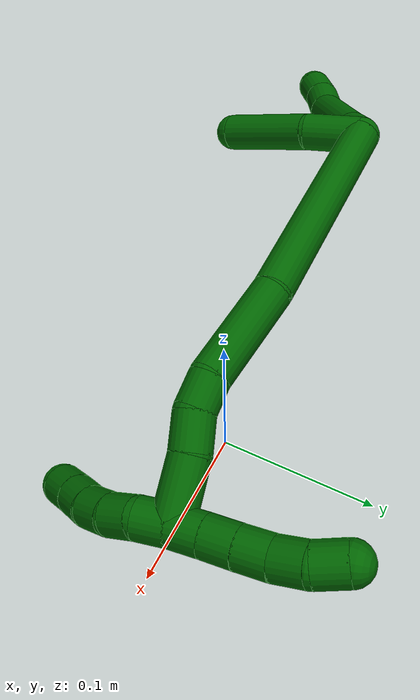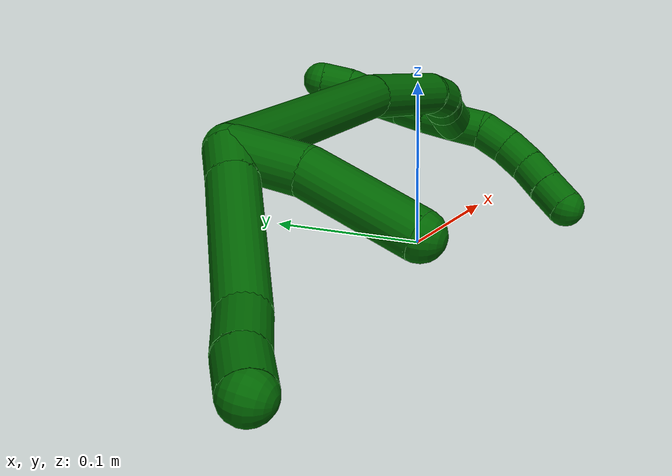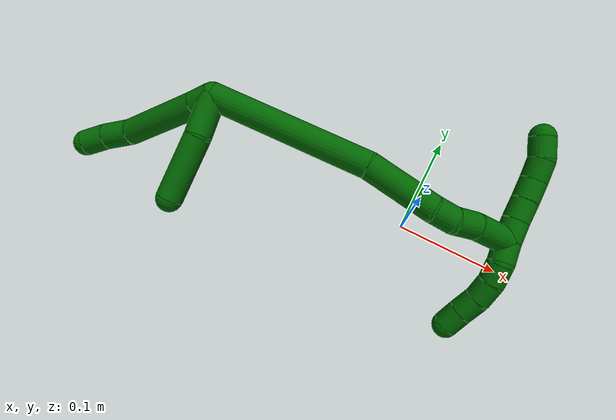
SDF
<sdf version="1.7">
 <world name="default">
  <model name="6">
   <static>0</static>
   <link name="6">
    <collision name="collision-cylinder-e_1_2_8">
     <pose>2.3e-05 0.008775 -0.005494 -2.13016 0.002267 -0.004095</pose>
     <geometry><cylinder><radius>0.0125</radius><length>0.020707</length></cylinder></geometry>
     <surface>
      <friction><ode><mu>1.16</mu><mu2>1.16</mu2><slip1>0</slip1><slip2>0</slip2></ode></friction>
      <contact><ode><kp>1e+06</kp><kd>1</kd><max_vel>0</max_vel><min_depth>0.001</min_depth></ode></contact>
     </surface>
    </collision>
    <visual name="visual-cylinder-e_1_2_8">
     <pose>2.3e-05 0.008775 -0.005494 -2.13016 0.002267 -0.004095</pose>
     <geometry><cylinder><radius>0.0125</radius><length>0.020707</length></cylinder></geometry>
     <material><ambient>0 0.392157 0.003922 1</ambient></material>
    </visual>
    <collision name="collision-cylinder-e_2_8_9">
     <pose>-0.000512 0.051824 -0.031013 -2.09958 -0.014084 0.02454</pose>
     <geometry><cylinder><radius>0.0125</radius><length>0.079397</length></cylinder></geometry>
     <surface>
      <friction><ode><mu>1.16</mu><mu2>1.16</mu2><slip1>0</slip1><slip2>0</slip2></ode></friction>
      <contact><ode><kp>1e+06</kp><kd>1</kd><max_vel>0</max_vel><min_depth>0.001</min_depth></ode></contact>
     </surface>
    </collision>
    <visual name="visual-cylinder-e_2_8_9">
     <pose>-0.000512 0.051824 -0.031013 -2.09958 -0.014084 0.02454</pose>
     <geometry><cylinder><radius>0.0125</radius><length>0.079397</length></cylinder></geometry>
     <material><ambient>0 0.392157 0.003922 1</ambient></material>
    </visual>
    <collision name="collision-cylinder-e_3_9_10">
     <pose>-0.004342 0.097662 -0.056746 -2.02929 -0.24835 0.396328</pose>
     <geometry><cylinder><radius>0.0125</radius><length>0.02661</length></cylinder></geometry>
     <surface>
      <friction><ode><mu>1.16</mu><mu2>1.16</mu2><slip1>0</slip1><slip2>0</slip2></ode></friction>
      <contact><ode><kp>1e+06</kp><kd>1</kd><max_vel>0</max_vel><min_depth>0.001</min_depth></ode></contact>
     </surface>
    </collision>
    <visual name="visual-cylinder-e_3_9_10">
     <pose>-0.004342 0.097662 -0.056746 -2.02929 -0.24835 0.396328</pose>
     <geometry><cylinder><radius>0.0125</radius><length>0.02661</length></cylinder></geometry>
     <material><ambient>0 0.392157 0.003922 1</ambient></material>
    </visual>
    <collision name="collision-cylinder-e_4_10_6">
     <pose>-0.010479 0.118623 -0.068704 -2.15774 -0.248765 0.458441</pose>
     <geometry><cylinder><radius>0.0125</radius><length>0.023287</length></cylinder></geometry>
     <surface>
      <friction><ode><mu>1.16</mu><mu2>1.16</mu2><slip1>0</slip1><slip2>0</slip2></ode></friction>
      <contact><ode><kp>1e+06</kp><kd>1</kd><max_vel>0</max_vel><min_depth>0.001</min_depth></ode></contact>
     </surface>
    </collision>
    <visual name="visual-cylinder-e_4_10_6">
     <pose>-0.010479 0.118623 -0.068704 -2.15774 -0.248765 0.458441</pose>
     <geometry><cylinder><radius>0.0125</radius><length>0.023287</length></cylinder></geometry>
     <material><ambient>0 0.392157 0.003922 1</ambient></material>
    </visual>
    <collision name="collision-cylinder-e_1_2_11">
     <pose>-5.7e-05 -0.000261 -0.019277 3.12803 -0.002975 -0.431913</pose>
     <geometry><cylinder><radius>0.0125</radius><length>0.038557</length></cylinder></geometry>
     <surface>
      <friction><ode><mu>1.16</mu><mu2>1.16</mu2><slip1>0</slip1><slip2>0</slip2></ode></friction>
      <contact><ode><kp>1e+06</kp><kd>1</kd><max_vel>0</max_vel><min_depth>0.001</min_depth></ode></contact>
     </surface>
    </collision>
    <visual name="visual-cylinder-e_1_2_11">
     <pose>-5.7e-05 -0.000261 -0.019277 3.12803 -0.002975 -0.431913</pose>
     <geometry><cylinder><radius>0.0125</radius><length>0.038557</length></cylinder></geometry>
     <material><ambient>0 0.392157 0.003922 1</ambient></material>
    </visual>
    <collision name="collision-cylinder-e_2_11_5">
     <pose>0.002856 0.005506 -0.068531 -2.94311 0.096842 -0.905901</pose>
     <geometry><cylinder><radius>0.0125</radius><length>0.061443</length></cylinder></geometry>
     <surface>
      <friction><ode><mu>1.16</mu><mu2>1.16</mu2><slip1>0</slip1><slip2>0</slip2></ode></friction>
      <contact><ode><kp>1e+06</kp><kd>1</kd><max_vel>0</max_vel><min_depth>0.001</min_depth></ode></contact>
     </surface>
    </collision>
    <visual name="visual-cylinder-e_2_11_5">
     <pose>0.002856 0.005506 -0.068531 -2.94311 0.096842 -0.905901</pose>
     <geometry><cylinder><radius>0.0125</radius><length>0.061443</length></cylinder></geometry>
     <material><ambient>0 0.392157 0.003922 1</ambient></material>
    </visual>
    <collision name="collision-cylinder-e_1_2_12">
     <pose>0.034263 -0.067245 -0.007087 1.6758 0.469007 0.518838</pose>
     <geometry><cylinder><radius>0.0125</radius><length>0.151605</length></cylinder></geometry>
     <surface>
      <friction><ode><mu>1.16</mu><mu2>1.16</mu2><slip1>0</slip1><slip2>0</slip2></ode></friction>
      <contact><ode><kp>1e+06</kp><kd>1</kd><max_vel>0</max_vel><min_depth>0.001</min_depth></ode></contact>
     </surface>
    </collision>
    <visual name="visual-cylinder-e_1_2_12">
     <pose>0.034263 -0.067245 -0.007087 1.6758 0.469007 0.518838</pose>
     <geometry><cylinder><radius>0.0125</radius><length>0.151605</length></cylinder></geometry>
     <material><ambient>0 0.392157 0.003922 1</ambient></material>
    </visual>
    <collision name="collision-cylinder-e_2_12_13">
     <pose>0.085568 -0.161458 -0.022402 1.86693 0.543674 0.72011</pose>
     <geometry><cylinder><radius>0.0125</radius><length>0.065891</length></cylinder></geometry>
     <surface>
      <friction><ode><mu>1.16</mu><mu2>1.16</mu2><slip1>0</slip1><slip2>0</slip2></ode></friction>
      <contact><ode><kp>1e+06</kp><kd>1</kd><max_vel>0</max_vel><min_depth>0.001</min_depth></ode></contact>
     </surface>
    </collision>
    <visual name="visual-cylinder-e_2_12_13">
     <pose>0.085568 -0.161458 -0.022402 1.86693 0.543674 0.72011</pose>
     <geometry><cylinder><radius>0.0125</radius><length>0.065891</length></cylinder></geometry>
     <material><ambient>0 0.392157 0.003922 1</ambient></material>
    </visual>
    <collision name="collision-cylinder-e_3_13_14">
     <pose>0.109949 -0.19595 -0.032069 1.75974 0.763958 0.904452</pose>
     <geometry><cylinder><radius>0.0125</radius><length>0.021217</length></cylinder></geometry>
     <surface>
      <friction><ode><mu>1.16</mu><mu2>1.16</mu2><slip1>0</slip1><slip2>0</slip2></ode></friction>
      <contact><ode><kp>1e+06</kp><kd>1</kd><max_vel>0</max_vel><min_depth>0.001</min_depth></ode></contact>
     </surface>
    </collision>
    <visual name="visual-cylinder-e_3_13_14">
     <pose>0.109949 -0.19595 -0.032069 1.75974 0.763958 0.904452</pose>
     <geometry><cylinder><radius>0.0125</radius><length>0.021217</length></cylinder></geometry>
     <material><ambient>0 0.392157 0.003922 1</ambient></material>
    </visual>
    <collision name="collision-cylinder-e_4_14_15">
     <pose>0.126724 -0.210281 -0.031972 1.34892 0.934099 0.766483</pose>
     <geometry><cylinder><radius>0.0125</radius><length>0.023471</length></cylinder></geometry>
     <surface>
      <friction><ode><mu>1.16</mu><mu2>1.16</mu2><slip1>0</slip1><slip2>0</slip2></ode></friction>
      <contact><ode><kp>1e+06</kp><kd>1</kd><max_vel>0</max_vel><min_depth>0.001</min_depth></ode></contact>
     </surface>
    </collision>
    <visual name="visual-cylinder-e_4_14_15">
     <pose>0.126724 -0.210281 -0.031972 1.34892 0.934099 0.766483</pose>
     <geometry><cylinder><radius>0.0125</radius><length>0.023471</length></cylinder></geometry>
     <material><ambient>0 0.392157 0.003922 1</ambient></material>
    </visual>
    <collision name="collision-cylinder-e_5_15_1">
     <pose>0.151675 -0.227871 -0.031128 1.6348 0.962402 1.0159</pose>
     <geometry><cylinder><radius>0.0125</radius><length>0.037815</length></cylinder></geometry>
     <surface>
      <friction><ode><mu>1.16</mu><mu2>1.16</mu2><slip1>0</slip1><slip2>0</slip2></ode></friction>
      <contact><ode><kp>1e+06</kp><kd>1</kd><max_vel>0</max_vel><min_depth>0.001</min_depth></ode></contact>
     </surface>
    </collision>
    <visual name="visual-cylinder-e_5_15_1">
     <pose>0.151675 -0.227871 -0.031128 1.6348 0.962402 1.0159</pose>
     <geometry><cylinder><radius>0.0125</radius><length>0.037815</length></cylinder></geometry>
     <material><ambient>0 0.392157 0.003922 1</ambient></material>
    </visual>
    <collision name="collision-cylinder-e_1_1_16">
     <pose>0.167159 -0.238965 -0.041814 3.11061 -0.003152 -0.202728</pose>
     <geometry><cylinder><radius>0.0125</radius><length>0.02</length></cylinder></geometry>
     <surface>
      <friction><ode><mu>1.16</mu><mu2>1.16</mu2><slip1>0</slip1><slip2>0</slip2></ode></friction>
      <contact><ode><kp>1e+06</kp><kd>1</kd><max_vel>0</max_vel><min_depth>0.001</min_depth></ode></contact>
     </surface>
    </collision>
    <visual name="visual-cylinder-e_1_1_16">
     <pose>0.167159 -0.238965 -0.041814 3.11061 -0.003152 -0.202728</pose>
     <geometry><cylinder><radius>0.0125</radius><length>0.02</length></cylinder></geometry>
     <material><ambient>0 0.392157 0.003922 1</ambient></material>
    </visual>
    <collision name="collision-cylinder-e_2_16_17">
     <pose>0.169667 -0.237319 -0.061281 -2.93795 0.256815 -1.80271</pose>
     <geometry><cylinder><radius>0.0125</radius><length>0.02</length></cylinder></geometry>
     <surface>
      <friction><ode><mu>1.16</mu><mu2>1.16</mu2><slip1>0</slip1><slip2>0</slip2></ode></friction>
      <contact><ode><kp>1e+06</kp><kd>1</kd><max_vel>0</max_vel><min_depth>0.001</min_depth></ode></contact>
     </surface>
    </collision>
    <visual name="visual-cylinder-e_2_16_17">
     <pose>0.169667 -0.237319 -0.061281 -2.93795 0.256815 -1.80271</pose>
     <geometry><cylinder><radius>0.0125</radius><length>0.02</length></cylinder></geometry>
     <material><ambient>0 0.392157 0.003922 1</ambient></material>
    </visual>
    <collision name="collision-cylinder-e_3_17_18">
     <pose>0.174328 -0.231356 -0.079666 -2.71905 0.213761 -0.927691</pose>
     <geometry><cylinder><radius>0.0125</radius><length>0.02</length></cylinder></geometry>
     <surface>
      <friction><ode><mu>1.16</mu><mu2>1.16</mu2><slip1>0</slip1><slip2>0</slip2></ode></friction>
      <contact><ode><kp>1e+06</kp><kd>1</kd><max_vel>0</max_vel><min_depth>0.001</min_depth></ode></contact>
     </surface>
    </collision>
    <visual name="visual-cylinder-e_3_17_18">
     <pose>0.174328 -0.231356 -0.079666 -2.71905 0.213761 -0.927691</pose>
     <geometry><cylinder><radius>0.0125</radius><length>0.02</length></cylinder></geometry>
     <material><ambient>0 0.392157 0.003922 1</ambient></material>
    </visual>
    <collision name="collision-cylinder-e_4_18_19">
     <pose>0.177841 -0.221666 -0.09669 -2.53046 0.139532 -0.436009</pose>
     <geometry><cylinder><radius>0.0125</radius><length>0.02</length></cylinder></geometry>
     <surface>
      <friction><ode><mu>1.16</mu><mu2>1.16</mu2><slip1>0</slip1><slip2>0</slip2></ode></friction>
      <contact><ode><kp>1e+06</kp><kd>1</kd><max_vel>0</max_vel><min_depth>0.001</min_depth></ode></contact>
     </surface>
    </collision>
    <visual name="visual-cylinder-e_4_18_19">
     <pose>0.177841 -0.221666 -0.09669 -2.53046 0.139532 -0.436009</pose>
     <geometry><cylinder><radius>0.0125</radius><length>0.02</length></cylinder></geometry>
     <material><ambient>0 0.392157 0.003922 1</ambient></material>
    </visual>
    <collision name="collision-cylinder-e_5_19_4">
     <pose>0.180687 -0.210581 -0.113088 -2.56395 0.146128 -0.483057</pose>
     <geometry><cylinder><radius>0.0125</radius><length>0.02</length></cylinder></geometry>
     <surface>
      <friction><ode><mu>1.16</mu><mu2>1.16</mu2><slip1>0</slip1><slip2>0</slip2></ode></friction>
      <contact><ode><kp>1e+06</kp><kd>1</kd><max_vel>0</max_vel><min_depth>0.001</min_depth></ode></contact>
     </surface>
    </collision>
    <visual name="visual-cylinder-e_5_19_4">
     <pose>0.180687 -0.210581 -0.113088 -2.56395 0.146128 -0.483057</pose>
     <geometry><cylinder><radius>0.0125</radius><length>0.02</length></cylinder></geometry>
     <material><ambient>0 0.392157 0.003922 1</ambient></material>
    </visual>
    <collision name="collision-cylinder-e_1_1_20">
     <pose>0.167589 -0.239121 -0.021838 0.046538 0.039911 0.000929</pose>
     <geometry><cylinder><radius>0.0125</radius><length>0.02</length></cylinder></geometry>
     <surface>
      <friction><ode><mu>1.16</mu><mu2>1.16</mu2><slip1>0</slip1><slip2>0</slip2></ode></friction>
      <contact><ode><kp>1e+06</kp><kd>1</kd><max_vel>0</max_vel><min_depth>0.001</min_depth></ode></contact>
     </surface>
    </collision>
    <visual name="visual-cylinder-e_1_1_20">
     <pose>0.167589 -0.239121 -0.021838 0.046538 0.039911 0.000929</pose>
     <geometry><cylinder><radius>0.0125</radius><length>0.02</length></cylinder></geometry>
     <material><ambient>0 0.392157 0.003922 1</ambient></material>
    </visual>
    <collision name="collision-cylinder-e_2_20_21">
     <pose>0.168247 -0.24058 -0.001909 0.099632 0.025871 0.00129</pose>
     <geometry><cylinder><radius>0.0125</radius><length>0.02</length></cylinder></geometry>
     <surface>
      <friction><ode><mu>1.16</mu><mu2>1.16</mu2><slip1>0</slip1><slip2>0</slip2></ode></friction>
      <contact><ode><kp>1e+06</kp><kd>1</kd><max_vel>0</max_vel><min_depth>0.001</min_depth></ode></contact>
     </surface>
    </collision>
    <visual name="visual-cylinder-e_2_20_21">
     <pose>0.168247 -0.24058 -0.001909 0.099632 0.025871 0.00129</pose>
     <geometry><cylinder><radius>0.0125</radius><length>0.02</length></cylinder></geometry>
     <material><ambient>0 0.392157 0.003922 1</ambient></material>
    </visual>
    <collision name="collision-cylinder-e_3_21_22">
     <pose>0.168683 -0.242345 0.018006 0.07723 0.017722 0.000685</pose>
     <geometry><cylinder><radius>0.0125</radius><length>0.02</length></cylinder></geometry>
     <surface>
      <friction><ode><mu>1.16</mu><mu2>1.16</mu2><slip1>0</slip1><slip2>0</slip2></ode></friction>
      <contact><ode><kp>1e+06</kp><kd>1</kd><max_vel>0</max_vel><min_depth>0.001</min_depth></ode></contact>
     </surface>
    </collision>
    <visual name="visual-cylinder-e_3_21_22">
     <pose>0.168683 -0.242345 0.018006 0.07723 0.017722 0.000685</pose>
     <geometry><cylinder><radius>0.0125</radius><length>0.02</length></cylinder></geometry>
     <material><ambient>0 0.392157 0.003922 1</ambient></material>
    </visual>
    <collision name="collision-cylinder-e_4_22_23">
     <pose>0.167575 -0.243922 0.037859 0.081268 -0.128805 -0.005244</pose>
     <geometry><cylinder><radius>0.0125</radius><length>0.02</length></cylinder></geometry>
     <surface>
      <friction><ode><mu>1.16</mu><mu2>1.16</mu2><slip1>0</slip1><slip2>0</slip2></ode></friction>
      <contact><ode><kp>1e+06</kp><kd>1</kd><max_vel>0</max_vel><min_depth>0.001</min_depth></ode></contact>
     </surface>
    </collision>
    <visual name="visual-cylinder-e_4_22_23">
     <pose>0.167575 -0.243922 0.037859 0.081268 -0.128805 -0.005244</pose>
     <geometry><cylinder><radius>0.0125</radius><length>0.02</length></cylinder></geometry>
     <material><ambient>0 0.392157 0.003922 1</ambient></material>
    </visual>
    <collision name="collision-cylinder-e_5_23_3">
     <pose>0.164754 -0.242381 0.057342 -0.239705 -0.15435 0.018625</pose>
     <geometry><cylinder><radius>0.0125</radius><length>0.02</length></cylinder></geometry>
     <surface>
      <friction><ode><mu>1.16</mu><mu2>1.16</mu2><slip1>0</slip1><slip2>0</slip2></ode></friction>
      <contact><ode><kp>1e+06</kp><kd>1</kd><max_vel>0</max_vel><min_depth>0.001</min_depth></ode></contact>
     </surface>
    </collision>
    <visual name="visual-cylinder-e_5_23_3">
     <pose>0.164754 -0.242381 0.057342 -0.239705 -0.15435 0.018625</pose>
     <geometry><cylinder><radius>0.0125</radius><length>0.02</length></cylinder></geometry>
     <material><ambient>0 0.392157 0.003922 1</ambient></material>
    </visual>
    <collision name="collision-sphere-3">
     <pose>0.163216 -0.240035 0.066941 0 -0 0</pose>
     <geometry><sphere><radius>0.0125</radius></sphere></geometry>
     <surface>
      <friction><ode><mu>1.16</mu><mu2>1.16</mu2><slip1>0</slip1><slip2>0</slip2></ode></friction>
      <contact><ode><kp>1e+06</kp><kd>1</kd><max_vel>0</max_vel><min_depth>0.001</min_depth></ode></contact>
     </surface>
    </collision>
    <visual name="visual-sphere-3">
     <pose>0.163216 -0.240035 0.066941 0 -0 0</pose>
     <geometry><sphere><radius>0.0125</radius></sphere></geometry>
     <material><ambient>0 0.392157 0.003922 1</ambient></material>
    </visual>
    <collision name="collision-sphere-23">
     <pose>0.166291 -0.244727 0.047744 0 -0 0</pose>
     <geometry><sphere><radius>0.0125</radius></sphere></geometry>
     <surface>
      <friction><ode><mu>1.16</mu><mu2>1.16</mu2><slip1>0</slip1><slip2>0</slip2></ode></friction>
      <contact><ode><kp>1e+06</kp><kd>1</kd><max_vel>0</max_vel><min_depth>0.001</min_depth></ode></contact>
     </surface>
    </collision>
    <visual name="visual-sphere-23">
     <pose>0.166291 -0.244727 0.047744 0 -0 0</pose>
     <geometry><sphere><radius>0.0125</radius></sphere></geometry>
     <material><ambient>0 0.392157 0.003922 1</ambient></material>
    </visual>
    <collision name="collision-sphere-22">
     <pose>0.16886 -0.243117 0.027975 0 -0 0</pose>
     <geometry><sphere><radius>0.0125</radius></sphere></geometry>
     <surface>
      <friction><ode><mu>1.16</mu><mu2>1.16</mu2><slip1>0</slip1><slip2>0</slip2></ode></friction>
      <contact><ode><kp>1e+06</kp><kd>1</kd><max_vel>0</max_vel><min_depth>0.001</min_depth></ode></contact>
     </surface>
    </collision>
    <visual name="visual-sphere-22">
     <pose>0.16886 -0.243117 0.027975 0 -0 0</pose>
     <geometry><sphere><radius>0.0125</radius></sphere></geometry>
     <material><ambient>0 0.392157 0.003922 1</ambient></material>
    </visual>
    <collision name="collision-sphere-21">
     <pose>0.168505 -0.241574 0.008038 0 -0 0</pose>
     <geometry><sphere><radius>0.0125</radius></sphere></geometry>
     <surface>
      <friction><ode><mu>1.16</mu><mu2>1.16</mu2><slip1>0</slip1><slip2>0</slip2></ode></friction>
      <contact><ode><kp>1e+06</kp><kd>1</kd><max_vel>0</max_vel><min_depth>0.001</min_depth></ode></contact>
     </surface>
    </collision>
    <visual name="visual-sphere-21">
     <pose>0.168505 -0.241574 0.008038 0 -0 0</pose>
     <geometry><sphere><radius>0.0125</radius></sphere></geometry>
     <material><ambient>0 0.392157 0.003922 1</ambient></material>
    </visual>
    <collision name="collision-sphere-20">
     <pose>0.167988 -0.239585 -0.011857 0 -0 0</pose>
     <geometry><sphere><radius>0.0125</radius></sphere></geometry>
     <surface>
      <friction><ode><mu>1.16</mu><mu2>1.16</mu2><slip1>0</slip1><slip2>0</slip2></ode></friction>
      <contact><ode><kp>1e+06</kp><kd>1</kd><max_vel>0</max_vel><min_depth>0.001</min_depth></ode></contact>
     </surface>
    </collision>
    <visual name="visual-sphere-20">
     <pose>0.167988 -0.239585 -0.011857 0 -0 0</pose>
     <geometry><sphere><radius>0.0125</radius></sphere></geometry>
     <material><ambient>0 0.392157 0.003922 1</ambient></material>
    </visual>
    <collision name="collision-sphere-4">
     <pose>0.182144 -0.205179 -0.121377 0 -0 0</pose>
     <geometry><sphere><radius>0.0125</radius></sphere></geometry>
     <surface>
      <friction><ode><mu>1.16</mu><mu2>1.16</mu2><slip1>0</slip1><slip2>0</slip2></ode></friction>
      <contact><ode><kp>1e+06</kp><kd>1</kd><max_vel>0</max_vel><min_depth>0.001</min_depth></ode></contact>
     </surface>
    </collision>
    <visual name="visual-sphere-4">
     <pose>0.182144 -0.205179 -0.121377 0 -0 0</pose>
     <geometry><sphere><radius>0.0125</radius></sphere></geometry>
     <material><ambient>0 0.392157 0.003922 1</ambient></material>
    </visual>
    <collision name="collision-sphere-11">
     <pose>-0.000115 -0.000523 -0.038554 0 -0 0</pose>
     <geometry><sphere><radius>0.0125</radius></sphere></geometry>
     <surface>
      <friction><ode><mu>1.16</mu><mu2>1.16</mu2><slip1>0</slip1><slip2>0</slip2></ode></friction>
      <contact><ode><kp>1e+06</kp><kd>1</kd><max_vel>0</max_vel><min_depth>0.001</min_depth></ode></contact>
     </surface>
    </collision>
    <visual name="visual-sphere-11">
     <pose>-0.000115 -0.000523 -0.038554 0 -0 0</pose>
     <geometry><sphere><radius>0.0125</radius></sphere></geometry>
     <material><ambient>0 0.392157 0.003922 1</ambient></material>
    </visual>
    <collision name="collision-sphere-6">
     <pose>-0.013345 0.128019 -0.074954 0 -0 0</pose>
     <geometry><sphere><radius>0.0125</radius></sphere></geometry>
     <surface>
      <friction><ode><mu>1.16</mu><mu2>1.16</mu2><slip1>0</slip1><slip2>0</slip2></ode></friction>
      <contact><ode><kp>1e+06</kp><kd>1</kd><max_vel>0</max_vel><min_depth>0.001</min_depth></ode></contact>
     </surface>
    </collision>
    <visual name="visual-sphere-6">
     <pose>-0.013345 0.128019 -0.074954 0 -0 0</pose>
     <geometry><sphere><radius>0.0125</radius></sphere></geometry>
     <material><ambient>0 0.392157 0.003922 1</ambient></material>
    </visual>
    <collision name="collision-sphere-10">
     <pose>-0.007612 0.109227 -0.062454 0 -0 0</pose>
     <geometry><sphere><radius>0.0125</radius></sphere></geometry>
     <surface>
      <friction><ode><mu>1.16</mu><mu2>1.16</mu2><slip1>0</slip1><slip2>0</slip2></ode></friction>
      <contact><ode><kp>1e+06</kp><kd>1</kd><max_vel>0</max_vel><min_depth>0.001</min_depth></ode></contact>
     </surface>
    </collision>
    <visual name="visual-sphere-10">
     <pose>-0.007612 0.109227 -0.062454 0 -0 0</pose>
     <geometry><sphere><radius>0.0125</radius></sphere></geometry>
     <material><ambient>0 0.392157 0.003922 1</ambient></material>
    </visual>
    <collision name="collision-sphere-9">
     <pose>-0.001071 0.086097 -0.051038 0 -0 0</pose>
     <geometry><sphere><radius>0.0125</radius></sphere></geometry>
     <surface>
      <friction><ode><mu>1.16</mu><mu2>1.16</mu2><slip1>0</slip1><slip2>0</slip2></ode></friction>
      <contact><ode><kp>1e+06</kp><kd>1</kd><max_vel>0</max_vel><min_depth>0.001</min_depth></ode></contact>
     </surface>
    </collision>
    <visual name="visual-sphere-9">
     <pose>-0.001071 0.086097 -0.051038 0 -0 0</pose>
     <geometry><sphere><radius>0.0125</radius></sphere></geometry>
     <material><ambient>0 0.392157 0.003922 1</ambient></material>
    </visual>
    <collision name="collision-sphere-2">
     <geometry><sphere><radius>0.0125</radius></sphere></geometry>
     <surface>
      <friction><ode><mu>1.16</mu><mu2>1.16</mu2><slip1>0</slip1><slip2>0</slip2></ode></friction>
      <contact><ode><kp>1e+06</kp><kd>1</kd><max_vel>0</max_vel><min_depth>0.001</min_depth></ode></contact>
     </surface>
    </collision>
    <visual name="visual-sphere-2">
     <geometry><sphere><radius>0.0125</radius></sphere></geometry>
     <material><ambient>0 0.392157 0.003922 1</ambient></material>
    </visual>
    <collision name="collision-sphere-19">
     <pose>0.179231 -0.215984 -0.1048 0 -0 0</pose>
     <geometry><sphere><radius>0.0125</radius></sphere></geometry>
     <surface>
      <friction><ode><mu>1.16</mu><mu2>1.16</mu2><slip1>0</slip1><slip2>0</slip2></ode></friction>
      <contact><ode><kp>1e+06</kp><kd>1</kd><max_vel>0</max_vel><min_depth>0.001</min_depth></ode></contact>
     </surface>
    </collision>
    <visual name="visual-sphere-19">
     <pose>0.179231 -0.215984 -0.1048 0 -0 0</pose>
     <geometry><sphere><radius>0.0125</radius></sphere></geometry>
     <material><ambient>0 0.392157 0.003922 1</ambient></material>
    </visual>
    <collision name="collision-sphere-8">
     <pose>4.7e-05 0.017551 -0.010988 0 -0 0</pose>
     <geometry><sphere><radius>0.0125</radius></sphere></geometry>
     <surface>
      <friction><ode><mu>1.16</mu><mu2>1.16</mu2><slip1>0</slip1><slip2>0</slip2></ode></friction>
      <contact><ode><kp>1e+06</kp><kd>1</kd><max_vel>0</max_vel><min_depth>0.001</min_depth></ode></contact>
     </surface>
    </collision>
    <visual name="visual-sphere-8">
     <pose>4.7e-05 0.017551 -0.010988 0 -0 0</pose>
     <geometry><sphere><radius>0.0125</radius></sphere></geometry>
     <material><ambient>0 0.392157 0.003922 1</ambient></material>
    </visual>
    <collision name="collision-sphere-5">
     <pose>0.005826 0.011536 -0.098508 0 -0 0</pose>
     <geometry><sphere><radius>0.0125</radius></sphere></geometry>
     <surface>
      <friction><ode><mu>1.16</mu><mu2>1.16</mu2><slip1>0</slip1><slip2>0</slip2></ode></friction>
      <contact><ode><kp>1e+06</kp><kd>1</kd><max_vel>0</max_vel><min_depth>0.001</min_depth></ode></contact>
     </surface>
    </collision>
    <visual name="visual-sphere-5">
     <pose>0.005826 0.011536 -0.098508 0 -0 0</pose>
     <geometry><sphere><radius>0.0125</radius></sphere></geometry>
     <material><ambient>0 0.392157 0.003922 1</ambient></material>
    </visual>
    <collision name="collision-sphere-12">
     <pose>0.068526 -0.13449 -0.014174 0 -0 0</pose>
     <geometry><sphere><radius>0.0125</radius></sphere></geometry>
     <surface>
      <friction><ode><mu>1.16</mu><mu2>1.16</mu2><slip1>0</slip1><slip2>0</slip2></ode></friction>
      <contact><ode><kp>1e+06</kp><kd>1</kd><max_vel>0</max_vel><min_depth>0.001</min_depth></ode></contact>
     </surface>
    </collision>
    <visual name="visual-sphere-12">
     <pose>0.068526 -0.13449 -0.014174 0 -0 0</pose>
     <geometry><sphere><radius>0.0125</radius></sphere></geometry>
     <material><ambient>0 0.392157 0.003922 1</ambient></material>
    </visual>
    <collision name="collision-sphere-13">
     <pose>0.10261 -0.188426 -0.03063 0 -0 0</pose>
     <geometry><sphere><radius>0.0125</radius></sphere></geometry>
     <surface>
      <friction><ode><mu>1.16</mu><mu2>1.16</mu2><slip1>0</slip1><slip2>0</slip2></ode></friction>
      <contact><ode><kp>1e+06</kp><kd>1</kd><max_vel>0</max_vel><min_depth>0.001</min_depth></ode></contact>
     </surface>
    </collision>
    <visual name="visual-sphere-13">
     <pose>0.10261 -0.188426 -0.03063 0 -0 0</pose>
     <geometry><sphere><radius>0.0125</radius></sphere></geometry>
     <material><ambient>0 0.392157 0.003922 1</ambient></material>
    </visual>
    <collision name="collision-sphere-14">
     <pose>0.117288 -0.203474 -0.033508 0 -0 0</pose>
     <geometry><sphere><radius>0.0125</radius></sphere></geometry>
     <surface>
      <friction><ode><mu>1.16</mu><mu2>1.16</mu2><slip1>0</slip1><slip2>0</slip2></ode></friction>
      <contact><ode><kp>1e+06</kp><kd>1</kd><max_vel>0</max_vel><min_depth>0.001</min_depth></ode></contact>
     </surface>
    </collision>
    <visual name="visual-sphere-14">
     <pose>0.117288 -0.203474 -0.033508 0 -0 0</pose>
     <geometry><sphere><radius>0.0125</radius></sphere></geometry>
     <material><ambient>0 0.392157 0.003922 1</ambient></material>
    </visual>
    <collision name="collision-sphere-15">
     <pose>0.13616 -0.217087 -0.030437 0 -0 0</pose>
     <geometry><sphere><radius>0.0125</radius></sphere></geometry>
     <surface>
      <friction><ode><mu>1.16</mu><mu2>1.16</mu2><slip1>0</slip1><slip2>0</slip2></ode></friction>
      <contact><ode><kp>1e+06</kp><kd>1</kd><max_vel>0</max_vel><min_depth>0.001</min_depth></ode></contact>
     </surface>
    </collision>
    <visual name="visual-sphere-15">
     <pose>0.13616 -0.217087 -0.030437 0 -0 0</pose>
     <geometry><sphere><radius>0.0125</radius></sphere></geometry>
     <material><ambient>0 0.392157 0.003922 1</ambient></material>
    </visual>
    <collision name="collision-sphere-1">
     <pose>0.16719 -0.238656 -0.031819 0 -0 0</pose>
     <geometry><sphere><radius>0.0125</radius></sphere></geometry>
     <surface>
      <friction><ode><mu>1.16</mu><mu2>1.16</mu2><slip1>0</slip1><slip2>0</slip2></ode></friction>
      <contact><ode><kp>1e+06</kp><kd>1</kd><max_vel>0</max_vel><min_depth>0.001</min_depth></ode></contact>
     </surface>
    </collision>
    <visual name="visual-sphere-1">
     <pose>0.16719 -0.238656 -0.031819 0 -0 0</pose>
     <geometry><sphere><radius>0.0125</radius></sphere></geometry>
     <material><ambient>0 0.392157 0.003922 1</ambient></material>
    </visual>
    <collision name="collision-sphere-18">
     <pose>0.17645 -0.227348 -0.088579 0 -0 0</pose>
     <geometry><sphere><radius>0.0125</radius></sphere></geometry>
     <surface>
      <friction><ode><mu>1.16</mu><mu2>1.16</mu2><slip1>0</slip1><slip2>0</slip2></ode></friction>
      <contact><ode><kp>1e+06</kp><kd>1</kd><max_vel>0</max_vel><min_depth>0.001</min_depth></ode></contact>
     </surface>
    </collision>
    <visual name="visual-sphere-18">
     <pose>0.17645 -0.227348 -0.088579 0 -0 0</pose>
     <geometry><sphere><radius>0.0125</radius></sphere></geometry>
     <material><ambient>0 0.392157 0.003922 1</ambient></material>
    </visual>
    <collision name="collision-sphere-16">
     <pose>0.167127 -0.239275 -0.051809 0 -0 0</pose>
     <geometry><sphere><radius>0.0125</radius></sphere></geometry>
     <surface>
      <friction><ode><mu>1.16</mu><mu2>1.16</mu2><slip1>0</slip1><slip2>0</slip2></ode></friction>
      <contact><ode><kp>1e+06</kp><kd>1</kd><max_vel>0</max_vel><min_depth>0.001</min_depth></ode></contact>
     </surface>
    </collision>
    <visual name="visual-sphere-16">
     <pose>0.167127 -0.239275 -0.051809 0 -0 0</pose>
     <geometry><sphere><radius>0.0125</radius></sphere></geometry>
     <material><ambient>0 0.392157 0.003922 1</ambient></material>
    </visual>
    <collision name="collision-sphere-17">
     <pose>0.172207 -0.235363 -0.070754 0 -0 0</pose>
     <geometry><sphere><radius>0.0125</radius></sphere></geometry>
     <surface>
      <friction><ode><mu>1.16</mu><mu2>1.16</mu2><slip1>0</slip1><slip2>0</slip2></ode></friction>
      <contact><ode><kp>1e+06</kp><kd>1</kd><max_vel>0</max_vel><min_depth>0.001</min_depth></ode></contact>
     </surface>
    </collision>
    <visual name="visual-sphere-17">
     <pose>0.172207 -0.235363 -0.070754 0 -0 0</pose>
     <geometry><sphere><radius>0.0125</radius></sphere></geometry>
     <material><ambient>0 0.392157 0.003922 1</ambient></material>
    </visual>
    <inertial>
     <pose>0.074373 -0.100696 -0.029147 0 -0 0</pose>
     <mass>0.75</mass>
     <inertia>
      <ixx>0.000474</ixx>
      <ixy>0</ixy>
      <ixz>0</ixz>
      <iyy>0.000132</iyy>
      <iyz>0</iyz>
      <izz>6.8e-05</izz>
     </inertia>
    </inertial>
   </link>
   <pose>-0.202277 0.001894 0.099126 -1.15659 1.04074 0.484697</pose>
  </model>
 </world>
</sdf>
